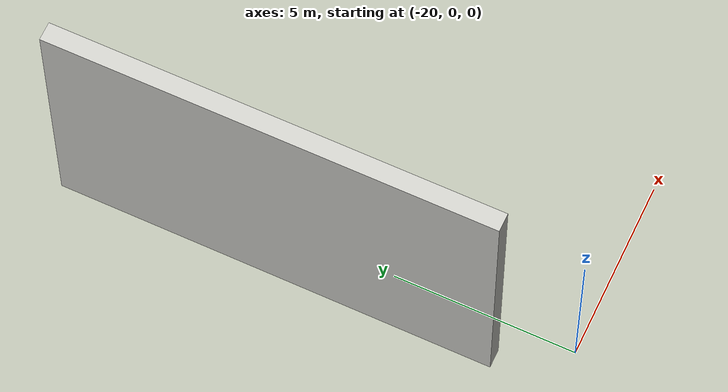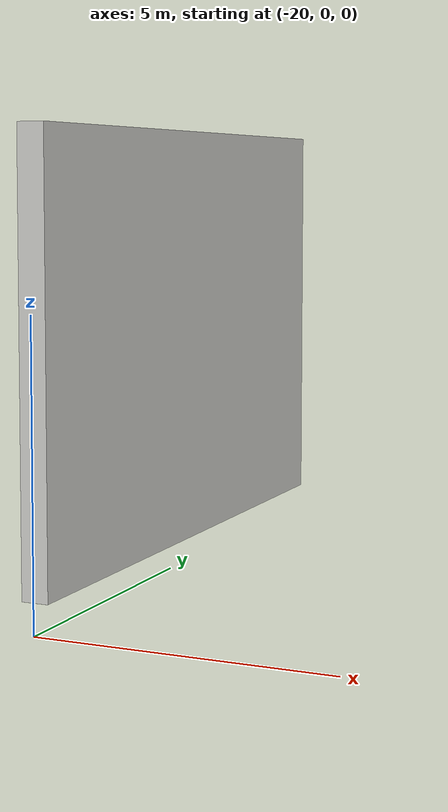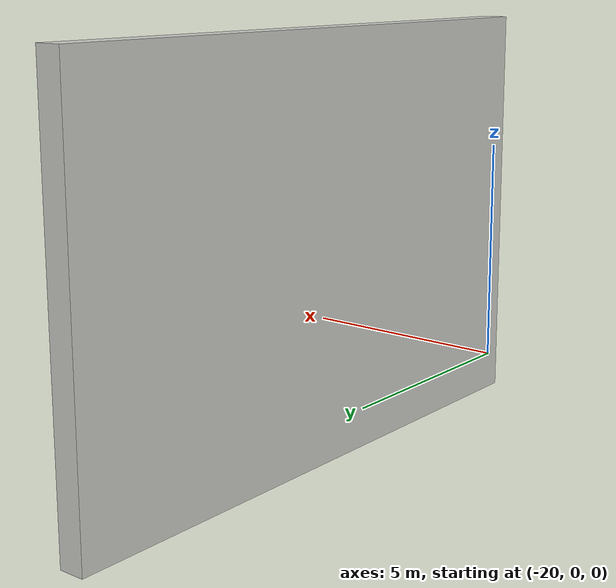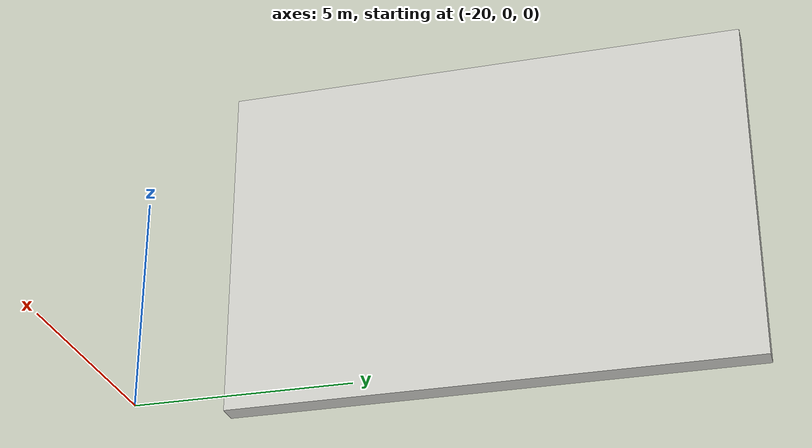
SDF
<?xml version='1.0'?>
<sdf version='1.7'>
  <model name='walll_12x8'>
    <pose>-10.6301 6.88968 0 0 -0 0</pose>
    <link name='Wall_0'>
      <collision name='Wall_0_Collision'>
        <geometry>
          <box>
            <size>12 0.5 8</size>
          </box>
        </geometry>
        <pose>0 0 4 0 -0 0</pose>
      </collision>
      <visual name='Wall_0_Visual'>
        <pose>0 0 4 0 -0 0</pose>
        <geometry>
          <box>
            <size>12 0.5 8</size>
          </box>
        </geometry>
        <material>
          <script>
            <uri>file://media/materials/scripts/gazebo.material</uri>
            <name>Gazebo/CeilingTiled</name>
          </script>
          <ambient>1 1 1 1</ambient>
        </material>
        <meta>
          <layer>0</layer>
        </meta>
      </visual>
      <pose>-10.3801 0.889676 0 0 -0 -1.5708</pose>
    </link>
    <static>1</static>
  </model>
</sdf>
